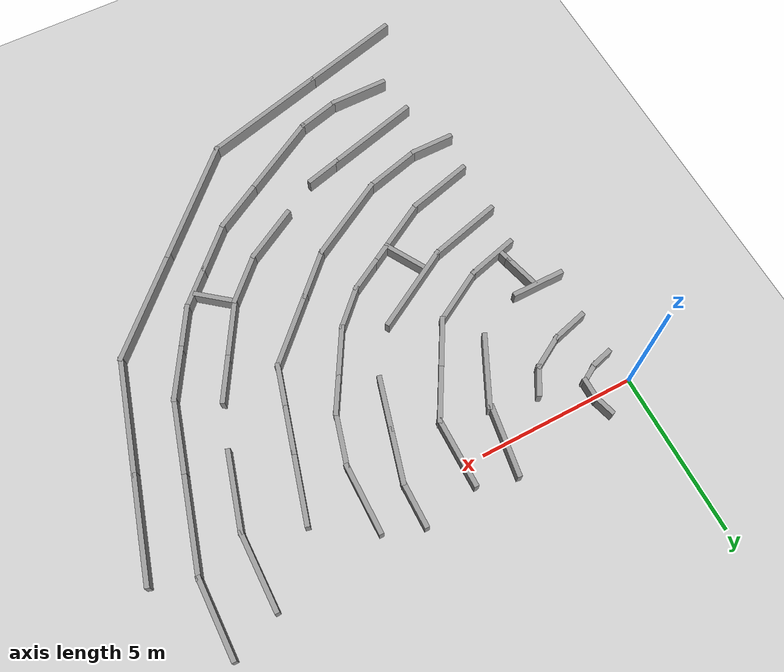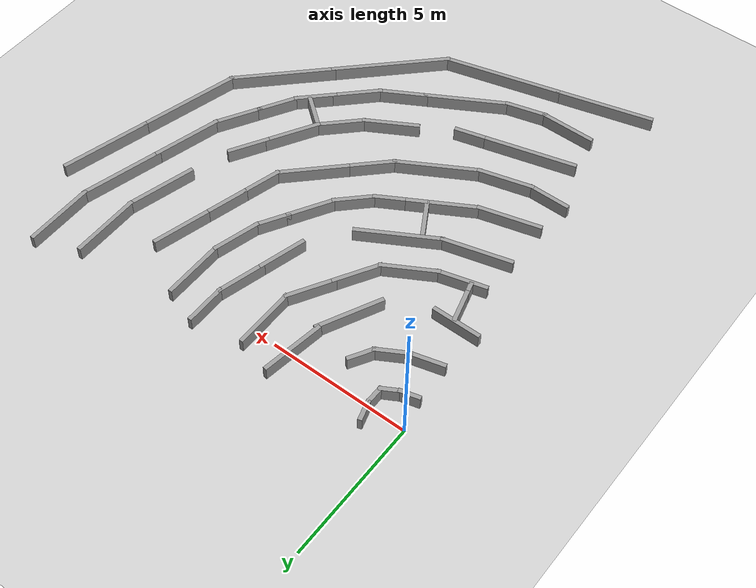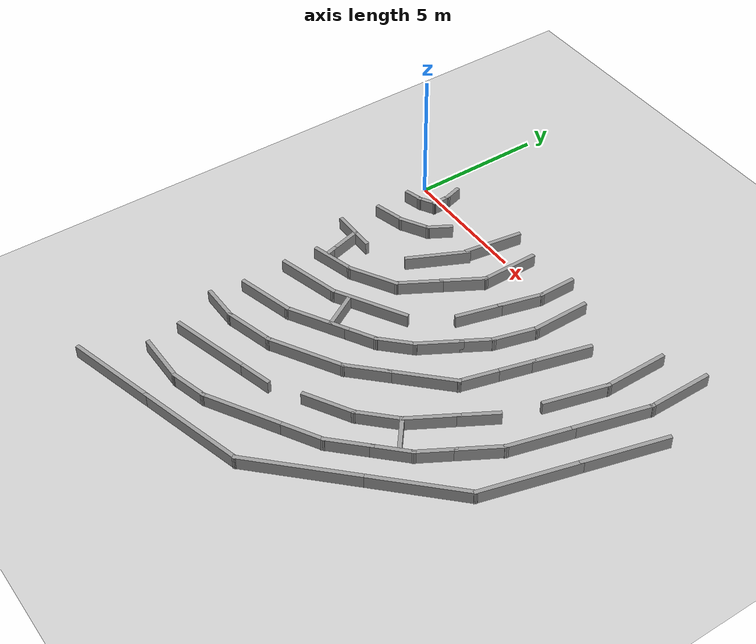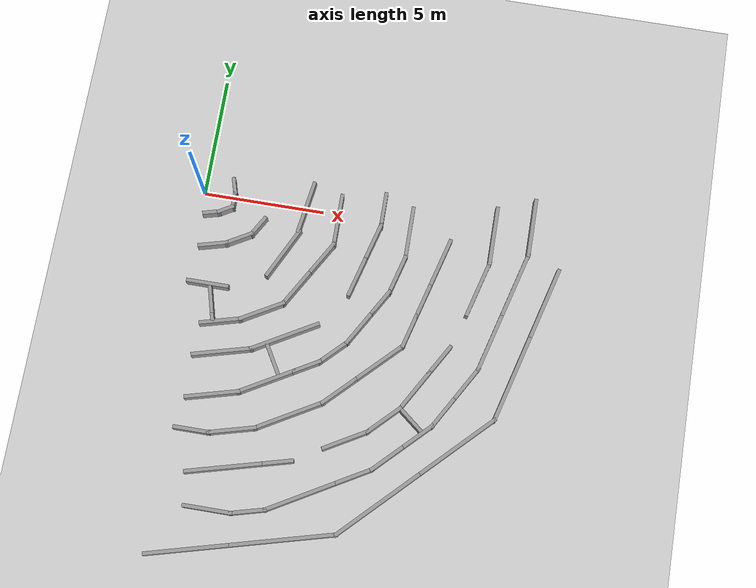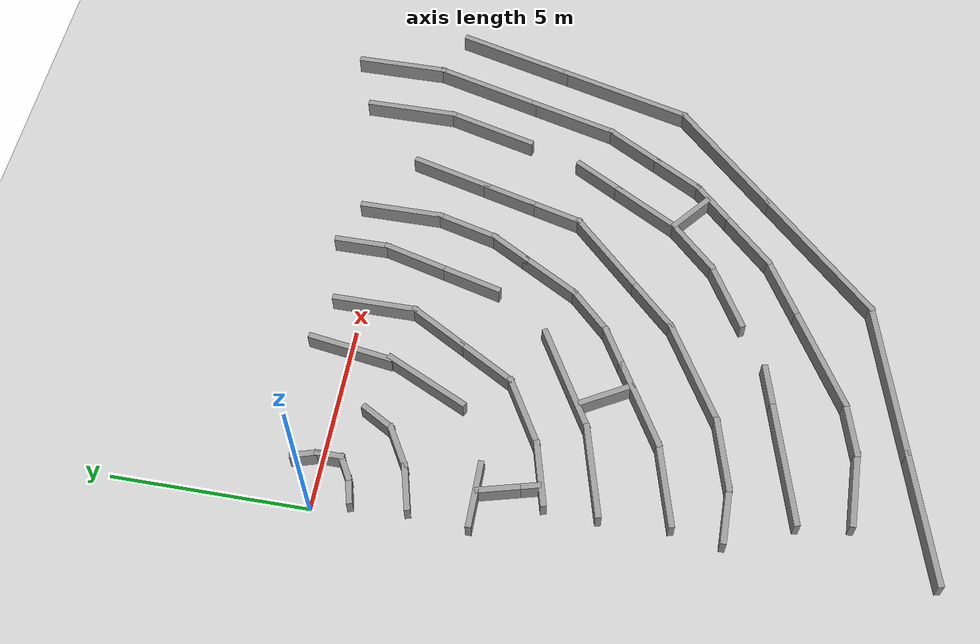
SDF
<sdf version="1.6">
 <world name="default">
  <model name="ground_plane">
   <static>1</static>
   <link name="link">
    <collision name="collision">
     <geometry><plane><normal>0 0 1</normal><size>100 100</size></plane></geometry>
     <surface><friction><ode><mu>100</mu><mu2>50</mu2></ode></friction></surface>
    </collision>
    <visual name="visual">
     <cast_shadows>0</cast_shadows>
     <geometry><plane><normal>0 0 1</normal><size>100 100</size></plane></geometry>
     <material>
      <script><uri>file://media/materials/scripts/gazebo.material</uri><name>Gazebo/Grey</name></script>
     </material>
    </visual>
   </link>
  </model>
  <model name="laby4">
   <pose>-11.3155 -0.151712 0 0 -0 0</pose>
   <link name="Wall_111">
    <collision name="Wall_111_Collision">
     <geometry><box><size>3.25 0.15 0.5</size></box></geometry>
     <pose>0 0 0.25 0 -0 0</pose>
    </collision>
    <visual name="Wall_111_Visual">
     <pose>0 0 0.25 0 -0 0</pose>
     <geometry><box><size>3.25 0.15 0.5</size></box></geometry>
     <material>
      <script><uri>file://media/materials/scripts/gazebo.material</uri><name>Gazebo/Grey</name></script>
      <ambient>1 1 1 1</ambient>
     </material>
    </visual>
    <pose>14.2935 -10.9288 0 0 -0 0.261799</pose>
   </link>
   <link name="Wall_112">
    <collision name="Wall_112_Collision">
     <geometry><box><size>1.25 0.15 0.5</size></box></geometry>
     <pose>0 0 0.25 0 -0 0</pose>
    </collision>
    <visual name="Wall_112_Visual">
     <pose>0 0 0.25 0 -0 0</pose>
     <geometry><box><size>1.25 0.15 0.5</size></box></geometry>
     <material>
      <script><uri>file://media/materials/scripts/gazebo.material</uri><name>Gazebo/Grey</name></script>
      <ambient>1 1 1 1</ambient>
     </material>
    </visual>
    <pose>16.3219 -10.3853 0 0 -0 0.261799</pose>
   </link>
   <link name="Wall_114">
    <collision name="Wall_114_Collision">
     <geometry><box><size>2 0.15 0.5</size></box></geometry>
     <pose>0 0 0.25 0 -0 0</pose>
    </collision>
    <visual name="Wall_114_Visual">
     <pose>0 0 0.25 0 -0 0</pose>
     <geometry><box><size>2 0.15 0.5</size></box></geometry>
     <material>
      <script><uri>file://media/materials/scripts/gazebo.material</uri><name>Gazebo/Grey</name></script>
      <ambient>1 1 1 1</ambient>
     </material>
    </visual>
    <pose>18.7972 -9.08348 0 0 -0 0.523599</pose>
   </link>
   <link name="Wall_115">
    <collision name="Wall_115_Collision">
     <geometry><box><size>1.75 0.15 0.5</size></box></geometry>
     <pose>0 0 0.25 0 -0 0</pose>
    </collision>
    <visual name="Wall_115_Visual">
     <pose>0 0 0.25 0 -0 0</pose>
     <geometry><box><size>1.75 0.15 0.5</size></box></geometry>
     <material>
      <script><uri>file://media/materials/scripts/gazebo.material</uri><name>Gazebo/Grey</name></script>
      <ambient>1 1 1 1</ambient>
     </material>
    </visual>
    <pose>20.164 -8.0553 0 0 -0 0.785398</pose>
   </link>
   <link name="Wall_116">
    <collision name="Wall_116_Collision">
     <geometry><box><size>2 0.15 0.5</size></box></geometry>
     <pose>0 0 0.25 0 -0 0</pose>
    </collision>
    <visual name="Wall_116_Visual">
     <pose>0 0 0.25 0 -0 0</pose>
     <geometry><box><size>2 0.15 0.5</size></box></geometry>
     <material>
      <script><uri>file://media/materials/scripts/gazebo.material</uri><name>Gazebo/Grey</name></script>
      <ambient>1 1 1 1</ambient>
     </material>
    </visual>
    <pose>21.1922 -6.68854 0 0 -0 1.0472</pose>
   </link>
   <link name="Wall_117">
    <collision name="Wall_117_Collision">
     <geometry><box><size>1.5 0.15 0.5</size></box></geometry>
     <pose>0 0 0.25 0 -0 0</pose>
    </collision>
    <visual name="Wall_117_Visual">
     <pose>0 0 0.25 0 -0 0</pose>
     <geometry><box><size>1.5 0.15 0.5</size></box></geometry>
     <material>
      <script><uri>file://media/materials/scripts/gazebo.material</uri><name>Gazebo/Grey</name></script>
      <ambient>1 1 1 1</ambient>
     </material>
    </visual>
    <pose>21.9922 -5.3029 0 0 -0 1.0472</pose>
   </link>
   <link name="Wall_119">
    <collision name="Wall_119_Collision">
     <geometry><box><size>2.5 0.15 0.5</size></box></geometry>
     <pose>0 0 0.25 0 -0 0</pose>
    </collision>
    <visual name="Wall_119_Visual">
     <pose>0 0 0.25 0 -0 0</pose>
     <geometry><box><size>2.5 0.15 0.5</size></box></geometry>
     <material>
      <script><uri>file://media/materials/scripts/gazebo.material</uri><name>Gazebo/Grey</name></script>
      <ambient>1 1 1 1</ambient>
     </material>
    </visual>
    <pose>23.0965 -2.13355 0 0 -0 1.309</pose>
   </link>
   <link name="Wall_120">
    <collision name="Wall_120_Collision">
     <geometry><box><size>2.5 0.15 0.5</size></box></geometry>
     <pose>0 0 0.25 0 -0 0</pose>
    </collision>
    <visual name="Wall_120_Visual">
     <pose>0 0 0.25 0 -0 0</pose>
     <geometry><box><size>2.5 0.15 0.5</size></box></geometry>
     <material>
      <script><uri>file://media/materials/scripts/gazebo.material</uri><name>Gazebo/Grey</name></script>
      <ambient>1 1 1 1</ambient>
     </material>
    </visual>
    <pose>23.4006 0.176411 0 0 -0 1.5708</pose>
   </link>
   <link name="Wall_137">
    <collision name="Wall_137_Collision">
     <geometry><box><size>1.38704 0.15 0.5</size></box></geometry>
     <pose>0 0 0.25 0 -0 0</pose>
    </collision>
    <visual name="Wall_137_Visual">
     <pose>0 0 0.25 0 -0 0</pose>
     <geometry><box><size>1.38704 0.15 0.5</size></box></geometry>
     <material>
      <script><uri>file://media/materials/scripts/gazebo.material</uri><name>Gazebo/Grey</name></script>
      <ambient>1 1 1 1</ambient>
     </material>
    </visual>
    <pose>21.2119 -7.87689 0 0 -0 2.46501</pose>
   </link>
   <link name="Wall_163">
    <collision name="Wall_163_Collision">
     <geometry><box><size>2.25 0.15 0.5</size></box></geometry>
     <pose>0 0 0.25 0 -0 0</pose>
    </collision>
    <visual name="Wall_163_Visual">
     <pose>0 0 0.25 0 -0 0</pose>
     <geometry><box><size>2.25 0.15 0.5</size></box></geometry>
     <material>
      <script><uri>file://media/materials/scripts/gazebo.material</uri><name>Gazebo/Grey</name></script>
      <ambient>1 1 1 1</ambient>
     </material>
    </visual>
    <pose>21.4128 -1.35608 0 0 0 -1.8326</pose>
   </link>
   <link name="Wall_164">
    <collision name="Wall_164_Collision">
     <geometry><box><size>1.5 0.15 0.5</size></box></geometry>
     <pose>0 0 0.25 0 -0 0</pose>
    </collision>
    <visual name="Wall_164_Visual">
     <pose>0 0 0.25 0 -0 0</pose>
     <geometry><box><size>1.5 0.15 0.5</size></box></geometry>
     <material>
      <script><uri>file://media/materials/scripts/gazebo.material</uri><name>Gazebo/Grey</name></script>
      <ambient>1 1 1 1</ambient>
     </material>
    </visual>
    <pose>20.9663 -3.0223 0 0 0 -1.8326</pose>
   </link>
   <link name="Wall_165">
    <collision name="Wall_165_Collision">
     <geometry><box><size>1.5 0.15 0.5</size></box></geometry>
     <pose>0 0 0.25 0 -0 0</pose>
    </collision>
    <visual name="Wall_165_Visual">
     <pose>0 0 0.25 0 -0 0</pose>
     <geometry><box><size>1.5 0.15 0.5</size></box></geometry>
     <material>
      <script><uri>file://media/materials/scripts/gazebo.material</uri><name>Gazebo/Grey</name></script>
      <ambient>1 1 1 1</ambient>
     </material>
    </visual>
    <pose>20.6169 -4.3263 0 0 0 -1.8326</pose>
   </link>
   <link name="Wall_166">
    <collision name="Wall_166_Collision">
     <geometry><box><size>2.5 0.15 0.5</size></box></geometry>
     <pose>0 0 0.25 0 -0 0</pose>
    </collision>
    <visual name="Wall_166_Visual">
     <pose>0 0 0.25 0 -0 0</pose>
     <geometry><box><size>2.5 0.15 0.5</size></box></geometry>
     <material>
      <script><uri>file://media/materials/scripts/gazebo.material</uri><name>Gazebo/Grey</name></script>
      <ambient>1 1 1 1</ambient>
     </material>
    </visual>
    <pose>19.6113 -5.80915 0 0 0 -2.35619</pose>
   </link>
   <link name="Wall_167">
    <collision name="Wall_167_Collision">
     <geometry><box><size>1.75 0.15 0.5</size></box></geometry>
     <pose>0 0 0.25 0 -0 0</pose>
    </collision>
    <visual name="Wall_167_Visual">
     <pose>0 0 0.25 0 -0 0</pose>
     <geometry><box><size>1.75 0.15 0.5</size></box></geometry>
     <material>
      <script><uri>file://media/materials/scripts/gazebo.material</uri><name>Gazebo/Grey</name></script>
      <ambient>1 1 1 1</ambient>
     </material>
    </visual>
    <pose>18.2148 -7.20568 0 0 0 -2.35619</pose>
   </link>
   <link name="Wall_168">
    <collision name="Wall_168_Collision">
     <geometry><box><size>3 0.15 0.5</size></box></geometry>
     <pose>0 0 0.25 0 -0 0</pose>
    </collision>
    <visual name="Wall_168_Visual">
     <pose>0 0 0.25 0 -0 0</pose>
     <geometry><box><size>3 0.15 0.5</size></box></geometry>
     <material>
      <script><uri>file://media/materials/scripts/gazebo.material</uri><name>Gazebo/Grey</name></script>
      <ambient>1 1 1 1</ambient>
     </material>
    </visual>
    <pose>16.415 -8.48387 0 0 0 -2.61799</pose>
   </link>
   <link name="Wall_169">
    <collision name="Wall_169_Collision">
     <geometry><box><size>2 0.15 0.5</size></box></geometry>
     <pose>0 0 0.25 0 -0 0</pose>
    </collision>
    <visual name="Wall_169_Visual">
     <pose>0 0 0.25 0 -0 0</pose>
     <geometry><box><size>2 0.15 0.5</size></box></geometry>
     <material>
      <script><uri>file://media/materials/scripts/gazebo.material</uri><name>Gazebo/Grey</name></script>
      <ambient>1 1 1 1</ambient>
     </material>
    </visual>
    <pose>14.2875 -9.43578 0 0 0 -2.87979</pose>
   </link>
   <link name="Wall_17">
    <collision name="Wall_17_Collision">
     <geometry><box><size>3.25 0.15 0.5</size></box></geometry>
     <pose>0 0 0.25 0 -0 0</pose>
    </collision>
    <visual name="Wall_17_Visual">
     <pose>0 0 0.25 0 -0 0</pose>
     <geometry><box><size>3.25 0.15 0.5</size></box></geometry>
     <material>
      <script><uri>file://media/materials/scripts/gazebo.material</uri><name>Gazebo/Grey</name></script>
      <ambient>1 1 1 1</ambient>
     </material>
    </visual>
    <pose>25.8278 -2.3614 0 0 0 -1.8326</pose>
   </link>
   <link name="Wall_170">
    <collision name="Wall_170_Collision">
     <geometry><box><size>1.5 0.15 0.5</size></box></geometry>
     <pose>0 0 0.25 0 -0 0</pose>
    </collision>
    <visual name="Wall_170_Visual">
     <pose>0 0 0.25 0 -0 0</pose>
     <geometry><box><size>1.5 0.15 0.5</size></box></geometry>
     <material>
      <script><uri>file://media/materials/scripts/gazebo.material</uri><name>Gazebo/Grey</name></script>
      <ambient>1 1 1 1</ambient>
     </material>
    </visual>
    <pose>12.719 -9.67519 0 0 -0 3.14159</pose>
   </link>
   <link name="Wall_18">
    <collision name="Wall_18_Collision">
     <geometry><box><size>3.75 0.15 0.5</size></box></geometry>
     <pose>0 0 0.25 0 -0 0</pose>
    </collision>
    <visual name="Wall_18_Visual">
     <pose>0 0 0.25 0 -0 0</pose>
     <geometry><box><size>3.75 0.15 0.5</size></box></geometry>
     <material>
      <script><uri>file://media/materials/scripts/gazebo.material</uri><name>Gazebo/Grey</name></script>
      <ambient>1 1 1 1</ambient>
     </material>
    </visual>
    <pose>24.9608 -5.59725 0 0 0 -1.8326</pose>
   </link>
   <link name="Wall_180">
    <collision name="Wall_180_Collision">
     <geometry><box><size>2.25 0.15 0.5</size></box></geometry>
     <pose>0 0 0.25 0 -0 0</pose>
    </collision>
    <visual name="Wall_180_Visual">
     <pose>0 0 0.25 0 -0 0</pose>
     <geometry><box><size>2.25 0.15 0.5</size></box></geometry>
     <material>
      <script><uri>file://media/materials/scripts/gazebo.material</uri><name>Gazebo/Grey</name></script>
      <ambient>1 1 1 1</ambient>
     </material>
    </visual>
    <pose>13.2549 -8.14749 0 0 -0 0.261799</pose>
   </link>
   <link name="Wall_181">
    <collision name="Wall_181_Collision">
     <geometry><box><size>2.5 0.15 0.5</size></box></geometry>
     <pose>0 0 0.25 0 -0 0</pose>
    </collision>
    <visual name="Wall_181_Visual">
     <pose>0 0 0.25 0 -0 0</pose>
     <geometry><box><size>2.5 0.15 0.5</size></box></geometry>
     <material>
      <script><uri>file://media/materials/scripts/gazebo.material</uri><name>Gazebo/Grey</name></script>
      <ambient>1 1 1 1</ambient>
     </material>
    </visual>
    <pose>15.2867 -7.28823 0 0 -0 0.523599</pose>
   </link>
   <link name="Wall_182">
    <collision name="Wall_182_Collision">
     <geometry><box><size>1.25 0.15 0.5</size></box></geometry>
     <pose>0 0 0.25 0 -0 0</pose>
    </collision>
    <visual name="Wall_182_Visual">
     <pose>0 0 0.25 0 -0 0</pose>
     <geometry><box><size>1.25 0.15 0.5</size></box></geometry>
     <material>
      <script><uri>file://media/materials/scripts/gazebo.material</uri><name>Gazebo/Grey</name></script>
      <ambient>1 1 1 1</ambient>
     </material>
    </visual>
    <pose>16.7806 -6.42573 0 0 -0 0.523599</pose>
   </link>
   <link name="Wall_183">
    <collision name="Wall_183_Collision">
     <geometry><box><size>1.5 0.15 0.5</size></box></geometry>
     <pose>0 0 0.25 0 -0 0</pose>
    </collision>
    <visual name="Wall_183_Visual">
     <pose>0 0 0.25 0 -0 0</pose>
     <geometry><box><size>1.5 0.15 0.5</size></box></geometry>
     <material>
      <script><uri>file://media/materials/scripts/gazebo.material</uri><name>Gazebo/Grey</name></script>
      <ambient>1 1 1 1</ambient>
     </material>
    </visual>
    <pose>17.7342 -5.67344 0 0 -0 0.785398</pose>
   </link>
   <link name="Wall_184">
    <collision name="Wall_184_Collision">
     <geometry><box><size>1.75 0.15 0.5</size></box></geometry>
     <pose>0 0 0.25 0 -0 0</pose>
    </collision>
    <visual name="Wall_184_Visual">
     <pose>0 0 0.25 0 -0 0</pose>
     <geometry><box><size>1.75 0.15 0.5</size></box></geometry>
     <material>
      <script><uri>file://media/materials/scripts/gazebo.material</uri><name>Gazebo/Grey</name></script>
      <ambient>1 1 1 1</ambient>
     </material>
    </visual>
    <pose>18.6115 -4.50332 0 0 -0 1.0472</pose>
   </link>
   <link name="Wall_185">
    <collision name="Wall_185_Collision">
     <geometry><box><size>1.25 0.15 0.5</size></box></geometry>
     <pose>0 0 0.25 0 -0 0</pose>
    </collision>
    <visual name="Wall_185_Visual">
     <pose>0 0 0.25 0 -0 0</pose>
     <geometry><box><size>1.25 0.15 0.5</size></box></geometry>
     <material>
      <script><uri>file://media/materials/scripts/gazebo.material</uri><name>Gazebo/Grey</name></script>
      <ambient>1 1 1 1</ambient>
     </material>
    </visual>
    <pose>19.2865 -3.33418 0 0 -0 1.0472</pose>
   </link>
   <link name="Wall_186">
    <collision name="Wall_186_Collision">
     <geometry><box><size>1.75 0.15 0.5</size></box></geometry>
     <pose>0 0 0.25 0 -0 0</pose>
    </collision>
    <visual name="Wall_186_Visual">
     <pose>0 0 0.25 0 -0 0</pose>
     <geometry><box><size>1.75 0.15 0.5</size></box></geometry>
     <material>
      <script><uri>file://media/materials/scripts/gazebo.material</uri><name>Gazebo/Grey</name></script>
      <ambient>1 1 1 1</ambient>
     </material>
    </visual>
    <pose>19.7685 -2.08513 0 0 -0 1.309</pose>
   </link>
   <link name="Wall_187">
    <collision name="Wall_187_Collision">
     <geometry><box><size>2.25 0.15 0.5</size></box></geometry>
     <pose>0 0 0.25 0 -0 0</pose>
    </collision>
    <visual name="Wall_187_Visual">
     <pose>0 0 0.25 0 -0 0</pose>
     <geometry><box><size>2.25 0.15 0.5</size></box></geometry>
     <material>
      <script><uri>file://media/materials/scripts/gazebo.material</uri><name>Gazebo/Grey</name></script>
      <ambient>1 1 1 1</ambient>
     </material>
    </visual>
    <pose>19.9756 -0.262389 0 0 -0 1.5708</pose>
   </link>
   <link name="Wall_19">
    <collision name="Wall_19_Collision">
     <geometry><box><size>3.75 0.15 0.5</size></box></geometry>
     <pose>0 0 0.25 0 -0 0</pose>
    </collision>
    <visual name="Wall_19_Visual">
     <pose>0 0 0.25 0 -0 0</pose>
     <geometry><box><size>3.75 0.15 0.5</size></box></geometry>
     <material>
      <script><uri>file://media/materials/scripts/gazebo.material</uri><name>Gazebo/Grey</name></script>
      <ambient>1 1 1 1</ambient>
     </material>
    </visual>
    <pose>23.2221 -8.60871 0 0 0 -2.35619</pose>
   </link>
   <link name="Wall_20">
    <collision name="Wall_20_Collision">
     <geometry><box><size>4.25 0.15 0.5</size></box></geometry>
     <pose>0 0 0.25 0 -0 0</pose>
    </collision>
    <visual name="Wall_20_Visual">
     <pose>0 0 0.25 0 -0 0</pose>
     <geometry><box><size>4.25 0.15 0.5</size></box></geometry>
     <material>
      <script><uri>file://media/materials/scripts/gazebo.material</uri><name>Gazebo/Grey</name></script>
      <ambient>1 1 1 1</ambient>
     </material>
    </visual>
    <pose>20.4998 -11.3311 0 0 0 -2.35619</pose>
   </link>
   <link name="Wall_21">
    <collision name="Wall_21_Collision">
     <geometry><box><size>4.25 0.15 0.5</size></box></geometry>
     <pose>0 0 0.25 0 -0 0</pose>
    </collision>
    <visual name="Wall_21_Visual">
     <pose>0 0 0.25 0 -0 0</pose>
     <geometry><box><size>4.25 0.15 0.5</size></box></geometry>
     <material>
      <script><uri>file://media/materials/scripts/gazebo.material</uri><name>Gazebo/Grey</name></script>
      <ambient>1 1 1 1</ambient>
     </material>
    </visual>
    <pose>17.07 -13.3112 0 0 0 -2.87979</pose>
   </link>
   <link name="Wall_22">
    <collision name="Wall_22_Collision">
     <geometry><box><size>3.5 0.15 0.5</size></box></geometry>
     <pose>0 0 0.25 0 -0 0</pose>
    </collision>
    <visual name="Wall_22_Visual">
     <pose>0 0 0.25 0 -0 0</pose>
     <geometry><box><size>3.5 0.15 0.5</size></box></geometry>
     <material>
      <script><uri>file://media/materials/scripts/gazebo.material</uri><name>Gazebo/Grey</name></script>
      <ambient>1 1 1 1</ambient>
     </material>
    </visual>
    <pose>13.472 -14.2753 0 0 0 -2.87979</pose>
   </link>
   <link name="Wall_220">
    <collision name="Wall_220_Collision">
     <geometry><box><size>3 0.15 0.5</size></box></geometry>
     <pose>0 0 0.25 0 -0 0</pose>
    </collision>
    <visual name="Wall_220_Visual">
     <pose>0 0 0.25 0 -0 0</pose>
     <geometry><box><size>3 0.15 0.5</size></box></geometry>
     <material>
      <script><uri>file://media/materials/scripts/gazebo.material</uri><name>Gazebo/Grey</name></script>
      <ambient>1 1 1 1</ambient>
     </material>
    </visual>
    <pose>15.6842 -5.36402 0 0 0 -2.61799</pose>
   </link>
   <link name="Wall_221">
    <collision name="Wall_221_Collision">
     <geometry><box><size>2.5 0.15 0.5</size></box></geometry>
     <pose>0 0 0.25 0 -0 0</pose>
    </collision>
    <visual name="Wall_221_Visual">
     <pose>0 0 0.25 0 -0 0</pose>
     <geometry><box><size>2.5 0.15 0.5</size></box></geometry>
     <material>
      <script><uri>file://media/materials/scripts/gazebo.material</uri><name>Gazebo/Grey</name></script>
      <ambient>1 1 1 1</ambient>
     </material>
    </visual>
    <pose>13.3152 -6.38063 0 0 0 -2.87979</pose>
   </link>
   <link name="Wall_239">
    <collision name="Wall_239_Collision">
     <geometry><box><size>1.5 0.15 0.5</size></box></geometry>
     <pose>0 0 0.25 0 -0 0</pose>
    </collision>
    <visual name="Wall_239_Visual">
     <pose>0 0 0.25 0 -0 0</pose>
     <geometry><box><size>1.5 0.15 0.5</size></box></geometry>
     <material>
      <script><uri>file://media/materials/scripts/gazebo.material</uri><name>Gazebo/Grey</name></script>
      <ambient>1 1 1 1</ambient>
     </material>
    </visual>
    <pose>18.7745 0.539867 0 0 0 -1.5708</pose>
   </link>
   <link name="Wall_240">
    <collision name="Wall_240_Collision">
     <geometry><box><size>1.75 0.15 0.5</size></box></geometry>
     <pose>0 0 0.25 0 -0 0</pose>
    </collision>
    <visual name="Wall_240_Visual">
     <pose>0 0 0.25 0 -0 0</pose>
     <geometry><box><size>1.75 0.15 0.5</size></box></geometry>
     <material>
      <script><uri>file://media/materials/scripts/gazebo.material</uri><name>Gazebo/Grey</name></script>
      <ambient>1 1 1 1</ambient>
     </material>
    </visual>
    <pose>18.5675 -0.907874 0 0 0 -1.8326</pose>
   </link>
   <link name="Wall_241">
    <collision name="Wall_241_Collision">
     <geometry><box><size>1.75 0.15 0.5</size></box></geometry>
     <pose>0 0 0.25 0 -0 0</pose>
    </collision>
    <visual name="Wall_241_Visual">
     <pose>0 0 0.25 0 -0 0</pose>
     <geometry><box><size>1.75 0.15 0.5</size></box></geometry>
     <material>
      <script><uri>file://media/materials/scripts/gazebo.material</uri><name>Gazebo/Grey</name></script>
      <ambient>1 1 1 1</ambient>
     </material>
    </visual>
    <pose>18.1534 -2.45336 0 0 0 -1.8326</pose>
   </link>
   <link name="Wall_243">
    <collision name="Wall_243_Collision">
     <geometry><box><size>1.5 0.15 0.5</size></box></geometry>
     <pose>0 0 0.25 0 -0 0</pose>
    </collision>
    <visual name="Wall_243_Visual">
     <pose>0 0 0.25 0 -0 0</pose>
     <geometry><box><size>1.5 0.15 0.5</size></box></geometry>
     <material>
      <script><uri>file://media/materials/scripts/gazebo.material</uri><name>Gazebo/Grey</name></script>
      <ambient>1 1 1 1</ambient>
     </material>
    </visual>
    <pose>15.4135 -6.43025 0 0 0 -1.0472</pose>
   </link>
   <link name="Wall_260">
    <collision name="Wall_260_Collision">
     <geometry><box><size>2.25 0.15 0.5</size></box></geometry>
     <pose>0 0 0.25 0 -0 0</pose>
    </collision>
    <visual name="Wall_260_Visual">
     <pose>0 0 0.25 0 -0 0</pose>
     <geometry><box><size>2.25 0.15 0.5</size></box></geometry>
     <material>
      <script><uri>file://media/materials/scripts/gazebo.material</uri><name>Gazebo/Grey</name></script>
      <ambient>1 1 1 1</ambient>
     </material>
    </visual>
    <pose>16.9945 -0.199564 0 0 0 -1.5708</pose>
   </link>
   <link name="Wall_261">
    <collision name="Wall_261_Collision">
     <geometry><box><size>1.75 0.15 0.5</size></box></geometry>
     <pose>0 0 0.25 0 -0 0</pose>
    </collision>
    <visual name="Wall_261_Visual">
     <pose>0 0 0.25 0 -0 0</pose>
     <geometry><box><size>1.75 0.15 0.5</size></box></geometry>
     <material>
      <script><uri>file://media/materials/scripts/gazebo.material</uri><name>Gazebo/Grey</name></script>
      <ambient>1 1 1 1</ambient>
     </material>
    </visual>
    <pose>16.5945 -1.94239 0 0 0 -2.0944</pose>
   </link>
   <link name="Wall_262">
    <collision name="Wall_262_Collision">
     <geometry><box><size>1.75 0.15 0.5</size></box></geometry>
     <pose>0 0 0.25 0 -0 0</pose>
    </collision>
    <visual name="Wall_262_Visual">
     <pose>0 0 0.25 0 -0 0</pose>
     <geometry><box><size>1.75 0.15 0.5</size></box></geometry>
     <material>
      <script><uri>file://media/materials/scripts/gazebo.material</uri><name>Gazebo/Grey</name></script>
      <ambient>1 1 1 1</ambient>
     </material>
    </visual>
    <pose>15.7945 -3.32802 0 0 0 -2.0944</pose>
   </link>
   <link name="Wall_263">
    <collision name="Wall_263_Collision">
     <geometry><box><size>2 0.15 0.5</size></box></geometry>
     <pose>0 0 0.25 0 -0 0</pose>
    </collision>
    <visual name="Wall_263_Visual">
     <pose>0 0 0.25 0 -0 0</pose>
     <geometry><box><size>2 0.15 0.5</size></box></geometry>
     <material>
      <script><uri>file://media/materials/scripts/gazebo.material</uri><name>Gazebo/Grey</name></script>
      <ambient>1 1 1 1</ambient>
     </material>
    </visual>
    <pose>14.5934 -4.48335 0 0 0 -2.61799</pose>
   </link>
   <link name="Wall_264">
    <collision name="Wall_264_Collision">
     <geometry><box><size>1.75 0.15 0.5</size></box></geometry>
     <pose>0 0 0.25 0 -0 0</pose>
    </collision>
    <visual name="Wall_264_Visual">
     <pose>0 0 0.25 0 -0 0</pose>
     <geometry><box><size>1.75 0.15 0.5</size></box></geometry>
     <material>
      <script><uri>file://media/materials/scripts/gazebo.material</uri><name>Gazebo/Grey</name></script>
      <ambient>1 1 1 1</ambient>
     </material>
    </visual>
    <pose>13.0196 -5.1529 0 0 0 -2.87979</pose>
   </link>
   <link name="Wall_270">
    <collision name="Wall_270_Collision">
     <geometry><box><size>1.75 0.15 0.5</size></box></geometry>
     <pose>0 0 0.25 0 -0 0</pose>
    </collision>
    <visual name="Wall_270_Visual">
     <pose>0 0 0.25 0 -0 0</pose>
     <geometry><box><size>1.75 0.15 0.5</size></box></geometry>
     <material>
      <script><uri>file://media/materials/scripts/gazebo.material</uri><name>Gazebo/Grey</name></script>
      <ambient>1 1 1 1</ambient>
     </material>
    </visual>
    <pose>12.2087 -3.7119 0 0 -0 3.14159</pose>
   </link>
   <link name="Wall_284">
    <collision name="Wall_284_Collision">
     <geometry><box><size>2.2798 0.15 0.5</size></box></geometry>
     <pose>0 0 0.25 0 -0 0</pose>
    </collision>
    <visual name="Wall_284_Visual">
     <pose>0 0 0.25 0 -0 0</pose>
     <geometry><box><size>2.2798 0.15 0.5</size></box></geometry>
     <material>
      <script><uri>file://media/materials/scripts/gazebo.material</uri><name>Gazebo/Grey</name></script>
      <ambient>1 1 1 1</ambient>
     </material>
    </visual>
    <pose>15.6087 0.124501 0 0 0 -1.71903</pose>
   </link>
   <link name="Wall_285">
    <collision name="Wall_285_Collision">
     <geometry><box><size>2.41001 0.15 0.5</size></box></geometry>
     <pose>0 0 0.25 0 -0 0</pose>
    </collision>
    <visual name="Wall_285_Visual">
     <pose>0 0 0.25 0 -0 0</pose>
     <geometry><box><size>2.41001 0.15 0.5</size></box></geometry>
     <material>
      <script><uri>file://media/materials/scripts/gazebo.material</uri><name>Gazebo/Grey</name></script>
      <ambient>1 1 1 1</ambient>
     </material>
    </visual>
    <pose>15.0224 -1.9462 0 0 0 -2.02085</pose>
   </link>
   <link name="Wall_287">
    <collision name="Wall_287_Collision">
     <geometry><box><size>1.25 0.15 0.5</size></box></geometry>
     <pose>0 0 0.25 0 -0 0</pose>
    </collision>
    <visual name="Wall_287_Visual">
     <pose>0 0 0.25 0 -0 0</pose>
     <geometry><box><size>1.25 0.15 0.5</size></box></geometry>
     <material>
      <script><uri>file://media/materials/scripts/gazebo.material</uri><name>Gazebo/Grey</name></script>
      <ambient>1 1 1 1</ambient>
     </material>
    </visual>
    <pose>12.4577 -4.29649 0 0 0 -1.309</pose>
   </link>
   <link name="Wall_288">
    <collision name="Wall_288_Collision">
     <geometry><box><size>0.5 0.15 0.5</size></box></geometry>
     <pose>0 0 0.25 0 -0 0</pose>
    </collision>
    <visual name="Wall_288_Visual">
     <pose>0 0 0.25 0 -0 0</pose>
     <geometry><box><size>0.5 0.15 0.5</size></box></geometry>
     <material>
      <script><uri>file://media/materials/scripts/gazebo.material</uri><name>Gazebo/Grey</name></script>
      <ambient>1 1 1 1</ambient>
     </material>
    </visual>
    <pose>12.6453 -4.99679 0 0 0 -1.309</pose>
   </link>
   <link name="Wall_292">
    <collision name="Wall_292_Collision">
     <geometry><box><size>1 0.15 0.5</size></box></geometry>
     <pose>0 0 0.25 0 -0 0</pose>
    </collision>
    <visual name="Wall_292_Visual">
     <pose>0 0 0.25 0 -0 0</pose>
     <geometry><box><size>1 0.15 0.5</size></box></geometry>
     <material>
      <script><uri>file://media/materials/scripts/gazebo.material</uri><name>Gazebo/Grey</name></script>
      <ambient>1 1 1 1</ambient>
     </material>
    </visual>
    <pose>13.8095 -0.986624 0 0 0 -2.0944</pose>
   </link>
   <link name="Wall_293">
    <collision name="Wall_293_Collision">
     <geometry><box><size>1.25 0.15 0.5</size></box></geometry>
     <pose>0 0 0.25 0 -0 0</pose>
    </collision>
    <visual name="Wall_293_Visual">
     <pose>0 0 0.25 0 -0 0</pose>
     <geometry><box><size>1.25 0.15 0.5</size></box></geometry>
     <material>
      <script><uri>file://media/materials/scripts/gazebo.material</uri><name>Gazebo/Grey</name></script>
      <ambient>1 1 1 1</ambient>
     </material>
    </visual>
    <pose>13.1207 -1.62968 0 0 0 -2.61799</pose>
   </link>
   <link name="Wall_294">
    <collision name="Wall_294_Collision">
     <geometry><box><size>1.25 0.15 0.5</size></box></geometry>
     <pose>0 0 0.25 0 -0 0</pose>
    </collision>
    <visual name="Wall_294_Visual">
     <pose>0 0 0.25 0 -0 0</pose>
     <geometry><box><size>1.25 0.15 0.5</size></box></geometry>
     <material>
      <script><uri>file://media/materials/scripts/gazebo.material</uri><name>Gazebo/Grey</name></script>
      <ambient>1 1 1 1</ambient>
     </material>
    </visual>
    <pose>12.1131 -2.04704 0 0 0 -2.87979</pose>
   </link>
   <link name="Wall_312">
    <collision name="Wall_312_Collision">
     <geometry><box><size>0.75364 0.15 0.5</size></box></geometry>
     <pose>0 0 0.25 0 -0 0</pose>
    </collision>
    <visual name="Wall_312_Visual">
     <pose>0 0 0.25 0 -0 0</pose>
     <geometry><box><size>0.75364 0.15 0.5</size></box></geometry>
     <material>
      <script><uri>file://media/materials/scripts/gazebo.material</uri><name>Gazebo/Grey</name></script>
      <ambient>1 1 1 1</ambient>
     </material>
    </visual>
    <pose>12.5238 0.541918 0 0 0 -1.28757</pose>
   </link>
   <link name="Wall_313">
    <collision name="Wall_313_Collision">
     <geometry><box><size>0.75 0.15 0.5</size></box></geometry>
     <pose>0 0 0.25 0 -0 0</pose>
    </collision>
    <visual name="Wall_313_Visual">
     <pose>0 0 0.25 0 -0 0</pose>
     <geometry><box><size>0.75 0.15 0.5</size></box></geometry>
     <material>
      <script><uri>file://media/materials/scripts/gazebo.material</uri><name>Gazebo/Grey</name></script>
      <ambient>1 1 1 1</ambient>
     </material>
    </visual>
    <pose>12.6081 -0.047867 0 0 0 -1.5708</pose>
   </link>
   <link name="Wall_314">
    <collision name="Wall_314_Collision">
     <geometry><box><size>0.75 0.15 0.5</size></box></geometry>
     <pose>0 0 0.25 0 -0 0</pose>
    </collision>
    <visual name="Wall_314_Visual">
     <pose>0 0 0.25 0 -0 0</pose>
     <geometry><box><size>0.75 0.15 0.5</size></box></geometry>
     <material>
      <script><uri>file://media/materials/scripts/gazebo.material</uri><name>Gazebo/Grey</name></script>
      <ambient>1 1 1 1</ambient>
     </material>
    </visual>
    <pose>12.3483 -0.497867 0 0 0 -2.61799</pose>
   </link>
   <link name="Wall_315">
    <collision name="Wall_315_Collision">
     <geometry><box><size>0.75 0.15 0.5</size></box></geometry>
     <pose>0 0 0.25 0 -0 0</pose>
    </collision>
    <visual name="Wall_315_Visual">
     <pose>0 0 0.25 0 -0 0</pose>
     <geometry><box><size>0.75 0.15 0.5</size></box></geometry>
     <material>
      <script><uri>file://media/materials/scripts/gazebo.material</uri><name>Gazebo/Grey</name></script>
      <ambient>1 1 1 1</ambient>
     </material>
    </visual>
    <pose>11.7987 -0.725513 0 0 0 -2.87979</pose>
   </link>
   <link name="Wall_54">
    <collision name="Wall_54_Collision">
     <geometry><box><size>2 0.15 0.5</size></box></geometry>
     <pose>0 0 0.25 0 -0 0</pose>
    </collision>
    <visual name="Wall_54_Visual">
     <pose>0 0 0.25 0 -0 0</pose>
     <geometry><box><size>2 0.15 0.5</size></box></geometry>
     <material>
      <script><uri>file://media/materials/scripts/gazebo.material</uri><name>Gazebo/Grey</name></script>
      <ambient>1 1 1 1</ambient>
     </material>
    </visual>
    <pose>13.9255 -12.6416 0 0 -0 0</pose>
   </link>
   <link name="Wall_55">
    <collision name="Wall_55_Collision">
     <geometry><box><size>1.5 0.15 0.5</size></box></geometry>
     <pose>0 0 0.25 0 -0 0</pose>
    </collision>
    <visual name="Wall_55_Visual">
     <pose>0 0 0.25 0 -0 0</pose>
     <geometry><box><size>1.5 0.15 0.5</size></box></geometry>
     <material>
      <script><uri>file://media/materials/scripts/gazebo.material</uri><name>Gazebo/Grey</name></script>
      <ambient>1 1 1 1</ambient>
     </material>
    </visual>
    <pose>15.5025 -12.4669 0 0 -0 0.261799</pose>
   </link>
   <link name="Wall_56">
    <collision name="Wall_56_Collision">
     <geometry><box><size>3 0.15 0.5</size></box></geometry>
     <pose>0 0 0.25 0 -0 0</pose>
    </collision>
    <visual name="Wall_56_Visual">
     <pose>0 0 0.25 0 -0 0</pose>
     <geometry><box><size>3 0.15 0.5</size></box></geometry>
     <material>
      <script><uri>file://media/materials/scripts/gazebo.material</uri><name>Gazebo/Grey</name></script>
      <ambient>1 1 1 1</ambient>
     </material>
    </visual>
    <pose>17.3886 -11.5797 0 0 -0 0.523599</pose>
   </link>
   <link name="Wall_57">
    <collision name="Wall_57_Collision">
     <geometry><box><size>1.75 0.15 0.5</size></box></geometry>
     <pose>0 0 0.25 0 -0 0</pose>
    </collision>
    <visual name="Wall_57_Visual">
     <pose>0 0 0.25 0 -0 0</pose>
     <geometry><box><size>1.75 0.15 0.5</size></box></geometry>
     <material>
      <script><uri>file://media/materials/scripts/gazebo.material</uri><name>Gazebo/Grey</name></script>
      <ambient>1 1 1 1</ambient>
     </material>
    </visual>
    <pose>19.3155 -10.4672 0 0 -0 0.523599</pose>
   </link>
   <link name="Wall_58">
    <collision name="Wall_58_Collision">
     <geometry><box><size>1.75 0.15 0.5</size></box></geometry>
     <pose>0 0 0.25 0 -0 0</pose>
    </collision>
    <visual name="Wall_58_Visual">
     <pose>0 0 0.25 0 -0 0</pose>
     <geometry><box><size>1.75 0.15 0.5</size></box></geometry>
     <material>
      <script><uri>file://media/materials/scripts/gazebo.material</uri><name>Gazebo/Grey</name></script>
      <ambient>1 1 1 1</ambient>
     </material>
    </visual>
    <pose>20.574 -9.50147 0 0 -0 0.785398</pose>
   </link>
   <link name="Wall_59">
    <collision name="Wall_59_Collision">
     <geometry><box><size>1.5 0.15 0.5</size></box></geometry>
     <pose>0 0 0.25 0 -0 0</pose>
    </collision>
    <visual name="Wall_59_Visual">
     <pose>0 0 0.25 0 -0 0</pose>
     <geometry><box><size>1.5 0.15 0.5</size></box></geometry>
     <material>
      <script><uri>file://media/materials/scripts/gazebo.material</uri><name>Gazebo/Grey</name></script>
      <ambient>1 1 1 1</ambient>
     </material>
    </visual>
    <pose>21.617 -8.45849 0 0 -0 0.785398</pose>
   </link>
   <link name="Wall_60">
    <collision name="Wall_60_Collision">
     <geometry><box><size>1.5 0.15 0.5</size></box></geometry>
     <pose>0 0 0.25 0 -0 0</pose>
    </collision>
    <visual name="Wall_60_Visual">
     <pose>0 0 0.25 0 -0 0</pose>
     <geometry><box><size>1.5 0.15 0.5</size></box></geometry>
     <material>
      <script><uri>file://media/materials/scripts/gazebo.material</uri><name>Gazebo/Grey</name></script>
      <ambient>1 1 1 1</ambient>
     </material>
    </visual>
    <pose>22.4318 -7.39662 0 0 -0 1.0472</pose>
   </link>
   <link name="Wall_61">
    <collision name="Wall_61_Collision">
     <geometry><box><size>1.75 0.15 0.5</size></box></geometry>
     <pose>0 0 0.25 0 -0 0</pose>
    </collision>
    <visual name="Wall_61_Visual">
     <pose>0 0 0.25 0 -0 0</pose>
     <geometry><box><size>1.75 0.15 0.5</size></box></geometry>
     <material>
      <script><uri>file://media/materials/scripts/gazebo.material</uri><name>Gazebo/Grey</name></script>
      <ambient>1 1 1 1</ambient>
     </material>
    </visual>
    <pose>23.1693 -6.11924 0 0 -0 1.0472</pose>
   </link>
   <link name="Wall_62">
    <collision name="Wall_62_Collision">
     <geometry><box><size>2.5 0.15 0.5</size></box></geometry>
     <pose>0 0 0.25 0 -0 0</pose>
    </collision>
    <visual name="Wall_62_Visual">
     <pose>0 0 0.25 0 -0 0</pose>
     <geometry><box><size>2.5 0.15 0.5</size></box></geometry>
     <material>
      <script><uri>file://media/materials/scripts/gazebo.material</uri><name>Gazebo/Grey</name></script>
      <ambient>1 1 1 1</ambient>
     </material>
    </visual>
    <pose>23.8734 -4.29145 0 0 -0 1.309</pose>
   </link>
   <link name="Wall_63">
    <collision name="Wall_63_Collision">
     <geometry><box><size>3 0.15 0.5</size></box></geometry>
     <pose>0 0 0.25 0 -0 0</pose>
    </collision>
    <visual name="Wall_63_Visual">
     <pose>0 0 0.25 0 -0 0</pose>
     <geometry><box><size>3 0.15 0.5</size></box></geometry>
     <material>
      <script><uri>file://media/materials/scripts/gazebo.material</uri><name>Gazebo/Grey</name></script>
      <ambient>1 1 1 1</ambient>
     </material>
    </visual>
    <pose>24.5463 -1.78005 0 0 -0 1.309</pose>
   </link>
   <link name="Wall_64">
    <collision name="Wall_64_Collision">
     <geometry><box><size>2.5 0.15 0.5</size></box></geometry>
     <pose>0 0 0.25 0 -0 0</pose>
    </collision>
    <visual name="Wall_64_Visual">
     <pose>0 0 0.25 0 -0 0</pose>
     <geometry><box><size>2.5 0.15 0.5</size></box></geometry>
     <material>
      <script><uri>file://media/materials/scripts/gazebo.material</uri><name>Gazebo/Grey</name></script>
      <ambient>1 1 1 1</ambient>
     </material>
    </visual>
    <pose>24.9151 0.771398 0 0 -0 1.5708</pose>
   </link>
   <static>1</static>
  </model>
 </world>
</sdf>
